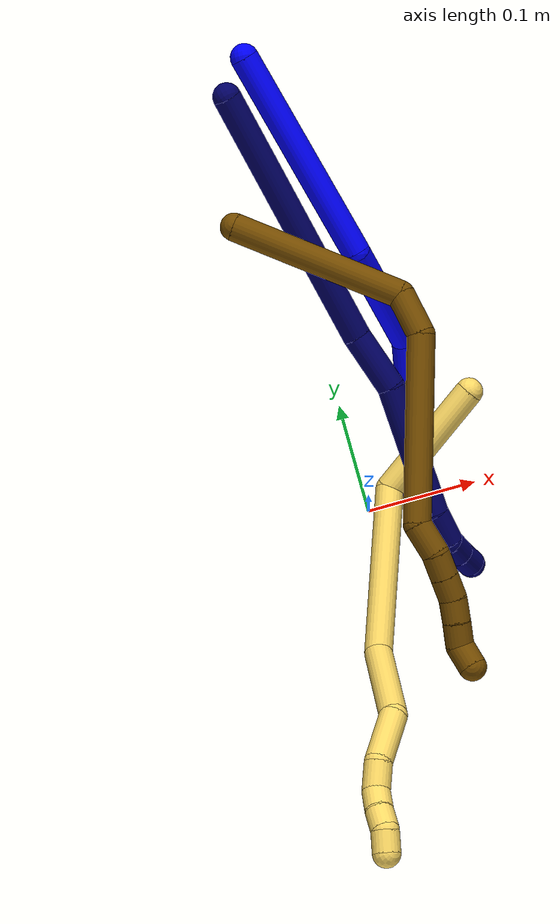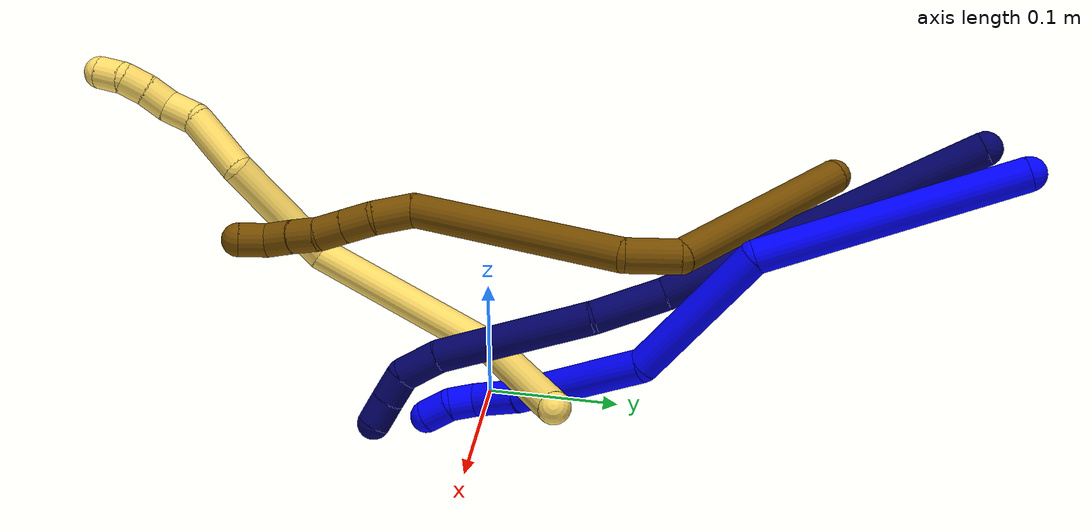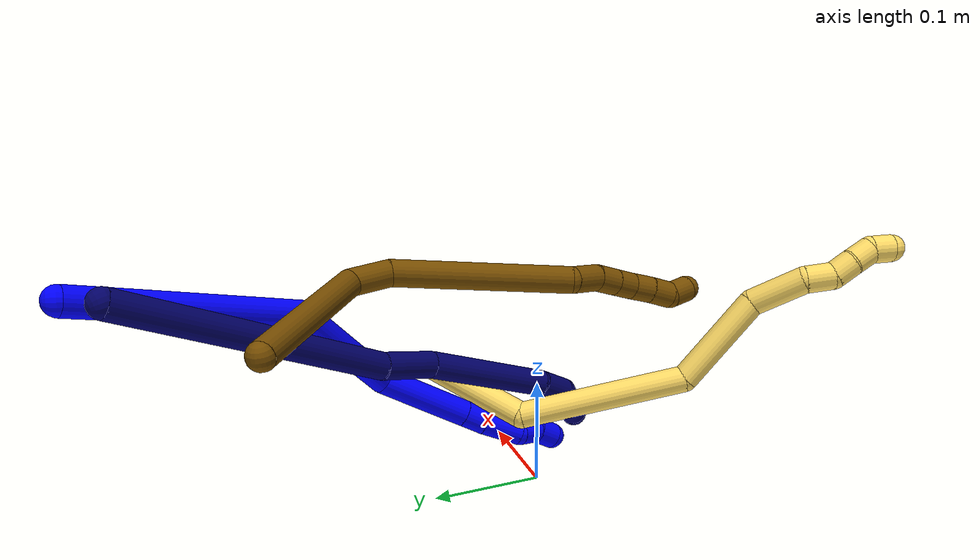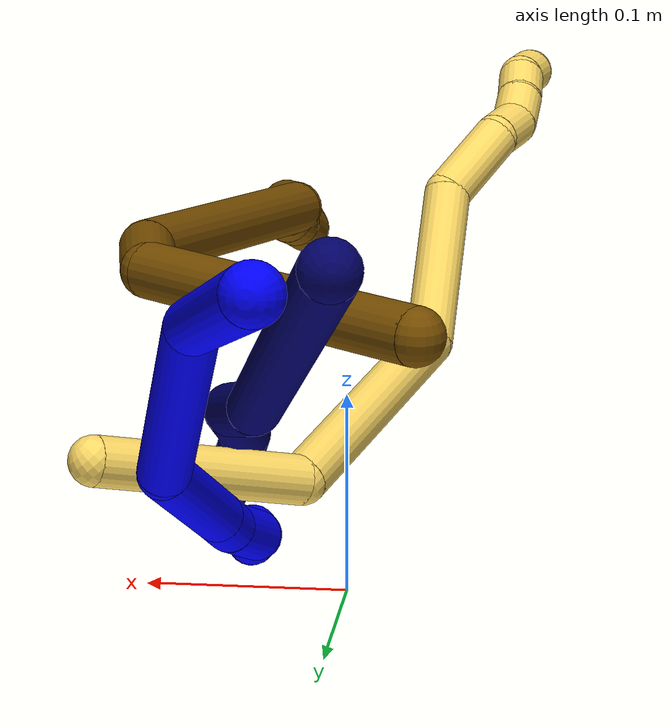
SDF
<sdf version="1.7">
 <world name="default">
  <model name="1">
   <static>0</static>
   <link name="1">
    <collision name="collision-cylinder-e_1_1_4">
     <pose>-0.028922 -0.023668 -0.090883 2.88683 -0.298747 -1.73142</pose>
     <geometry><cylinder><radius>0.0125</radius><length>0.196533</length></cylinder></geometry>
     <surface>
      <friction><ode><mu>1.16</mu><mu2>1.16</mu2><slip1>0</slip1><slip2>0</slip2></ode></friction>
      <contact><ode><kp>1e+06</kp><kd>1</kd><max_vel>0</max_vel><min_depth>0.001</min_depth></ode></contact>
     </surface>
    </collision>
    <visual name="visual-cylinder-e_1_1_4">
     <pose>-0.028922 -0.023668 -0.090883 2.88683 -0.298747 -1.73142</pose>
     <geometry><cylinder><radius>0.0125</radius><length>0.196533</length></cylinder></geometry>
     <material><ambient>0 0 1 1</ambient></material>
    </visual>
    <collision name="collision-cylinder-e_2_4_5">
     <pose>-0.069808 -0.088351 -0.220334 2.32544 -0.209386 -0.476834</pose>
     <geometry><cylinder><radius>0.0125</radius><length>0.115117</length></cylinder></geometry>
     <surface>
      <friction><ode><mu>1.16</mu><mu2>1.16</mu2><slip1>0</slip1><slip2>0</slip2></ode></friction>
      <contact><ode><kp>1e+06</kp><kd>1</kd><max_vel>0</max_vel><min_depth>0.001</min_depth></ode></contact>
     </surface>
    </collision>
    <visual name="visual-cylinder-e_2_4_5">
     <pose>-0.069808 -0.088351 -0.220334 2.32544 -0.209386 -0.476834</pose>
     <geometry><cylinder><radius>0.0125</radius><length>0.115117</length></cylinder></geometry>
     <material><ambient>0 0 1 1</ambient></material>
    </visual>
    <collision name="collision-cylinder-e_3_5_6">
     <pose>-0.076222 -0.147536 -0.297777 2.70442 0.128641 0.564431</pose>
     <geometry><cylinder><radius>0.0125</radius><length>0.086537</length></cylinder></geometry>
     <surface>
      <friction><ode><mu>1.16</mu><mu2>1.16</mu2><slip1>0</slip1><slip2>0</slip2></ode></friction>
      <contact><ode><kp>1e+06</kp><kd>1</kd><max_vel>0</max_vel><min_depth>0.001</min_depth></ode></contact>
     </surface>
    </collision>
    <visual name="visual-cylinder-e_3_5_6">
     <pose>-0.076222 -0.147536 -0.297777 2.70442 0.128641 0.564431</pose>
     <geometry><cylinder><radius>0.0125</radius><length>0.086537</length></cylinder></geometry>
     <material><ambient>0 0 1 1</ambient></material>
    </visual>
    <collision name="collision-cylinder-e_4_6_7">
     <pose>-0.069357 -0.170481 -0.346634 2.69522 0.118187 0.509976</pose>
     <geometry><cylinder><radius>0.0125</radius><length>0.022288</length></cylinder></geometry>
     <surface>
      <friction><ode><mu>1.16</mu><mu2>1.16</mu2><slip1>0</slip1><slip2>0</slip2></ode></friction>
      <contact><ode><kp>1e+06</kp><kd>1</kd><max_vel>0</max_vel><min_depth>0.001</min_depth></ode></contact>
     </surface>
    </collision>
    <visual name="visual-cylinder-e_4_6_7">
     <pose>-0.069357 -0.170481 -0.346634 2.69522 0.118187 0.509976</pose>
     <geometry><cylinder><radius>0.0125</radius><length>0.022288</length></cylinder></geometry>
     <material><ambient>0 0 1 1</ambient></material>
    </visual>
    <collision name="collision-cylinder-e_5_7_8">
     <pose>-0.064515 -0.180992 -0.374177 2.82598 0.18867 1.07285</pose>
     <geometry><cylinder><radius>0.0125</radius><length>0.037613</length></cylinder></geometry>
     <surface>
      <friction><ode><mu>1.16</mu><mu2>1.16</mu2><slip1>0</slip1><slip2>0</slip2></ode></friction>
      <contact><ode><kp>1e+06</kp><kd>1</kd><max_vel>0</max_vel><min_depth>0.001</min_depth></ode></contact>
     </surface>
    </collision>
    <visual name="visual-cylinder-e_5_7_8">
     <pose>-0.064515 -0.180992 -0.374177 2.82598 0.18867 1.07285</pose>
     <geometry><cylinder><radius>0.0125</radius><length>0.037613</length></cylinder></geometry>
     <material><ambient>0 0 1 1</ambient></material>
    </visual>
    <collision name="collision-cylinder-e_6_8_9">
     <pose>-0.063927 -0.18788 -0.401418 3.02299 -0.292756 -2.37594</pose>
     <geometry><cylinder><radius>0.0125</radius><length>0.020364</length></cylinder></geometry>
     <surface>
      <friction><ode><mu>1.16</mu><mu2>1.16</mu2><slip1>0</slip1><slip2>0</slip2></ode></friction>
      <contact><ode><kp>1e+06</kp><kd>1</kd><max_vel>0</max_vel><min_depth>0.001</min_depth></ode></contact>
     </surface>
    </collision>
    <visual name="visual-cylinder-e_6_8_9">
     <pose>-0.063927 -0.18788 -0.401418 3.02299 -0.292756 -2.37594</pose>
     <geometry><cylinder><radius>0.0125</radius><length>0.020364</length></cylinder></geometry>
     <material><ambient>0 0 1 1</ambient></material>
    </visual>
    <collision name="collision-cylinder-e_7_9_2">
     <pose>-0.068442 -0.194354 -0.420332 2.61888 -0.146914 -0.536968</pose>
     <geometry><cylinder><radius>0.0125</radius><length>0.021547</length></cylinder></geometry>
     <surface>
      <friction><ode><mu>1.16</mu><mu2>1.16</mu2><slip1>0</slip1><slip2>0</slip2></ode></friction>
      <contact><ode><kp>1e+06</kp><kd>1</kd><max_vel>0</max_vel><min_depth>0.001</min_depth></ode></contact>
     </surface>
    </collision>
    <visual name="visual-cylinder-e_7_9_2">
     <pose>-0.068442 -0.194354 -0.420332 2.61888 -0.146914 -0.536968</pose>
     <geometry><cylinder><radius>0.0125</radius><length>0.021547</length></cylinder></geometry>
     <material><ambient>0 0 1 1</ambient></material>
    </visual>
    <collision name="collision-sphere-2">
     <pose>-0.070019 -0.199674 -0.429567 0 -0 0</pose>
     <geometry><sphere><radius>0.0125</radius></sphere></geometry>
     <surface>
      <friction><ode><mu>1.16</mu><mu2>1.16</mu2><slip1>0</slip1><slip2>0</slip2></ode></friction>
      <contact><ode><kp>1e+06</kp><kd>1</kd><max_vel>0</max_vel><min_depth>0.001</min_depth></ode></contact>
     </surface>
    </collision>
    <visual name="visual-sphere-2">
     <pose>-0.070019 -0.199674 -0.429567 0 -0 0</pose>
     <geometry><sphere><radius>0.0125</radius></sphere></geometry>
     <material><ambient>0 0 1 1</ambient></material>
    </visual>
    <collision name="collision-sphere-9">
     <pose>-0.066865 -0.189033 -0.411098 0 -0 0</pose>
     <geometry><sphere><radius>0.0125</radius></sphere></geometry>
     <surface>
      <friction><ode><mu>1.16</mu><mu2>1.16</mu2><slip1>0</slip1><slip2>0</slip2></ode></friction>
      <contact><ode><kp>1e+06</kp><kd>1</kd><max_vel>0</max_vel><min_depth>0.001</min_depth></ode></contact>
     </surface>
    </collision>
    <visual name="visual-sphere-9">
     <pose>-0.066865 -0.189033 -0.411098 0 -0 0</pose>
     <geometry><sphere><radius>0.0125</radius></sphere></geometry>
     <material><ambient>0 0 1 1</ambient></material>
    </visual>
    <collision name="collision-sphere-4">
     <pose>-0.057844 -0.047335 -0.181765 0 -0 0</pose>
     <geometry><sphere><radius>0.0125</radius></sphere></geometry>
     <surface>
      <friction><ode><mu>1.16</mu><mu2>1.16</mu2><slip1>0</slip1><slip2>0</slip2></ode></friction>
      <contact><ode><kp>1e+06</kp><kd>1</kd><max_vel>0</max_vel><min_depth>0.001</min_depth></ode></contact>
     </surface>
    </collision>
    <visual name="visual-sphere-4">
     <pose>-0.057844 -0.047335 -0.181765 0 -0 0</pose>
     <geometry><sphere><radius>0.0125</radius></sphere></geometry>
     <material><ambient>0 0 1 1</ambient></material>
    </visual>
    <collision name="collision-sphere-1">
     <geometry><sphere><radius>0.0125</radius></sphere></geometry>
     <surface>
      <friction><ode><mu>1.16</mu><mu2>1.16</mu2><slip1>0</slip1><slip2>0</slip2></ode></friction>
      <contact><ode><kp>1e+06</kp><kd>1</kd><max_vel>0</max_vel><min_depth>0.001</min_depth></ode></contact>
     </surface>
    </collision>
    <visual name="visual-sphere-1">
     <geometry><sphere><radius>0.0125</radius></sphere></geometry>
     <material><ambient>0 0 1 1</ambient></material>
    </visual>
    <collision name="collision-sphere-8">
     <pose>-0.060988 -0.186726 -0.391737 0 -0 0</pose>
     <geometry><sphere><radius>0.0125</radius></sphere></geometry>
     <surface>
      <friction><ode><mu>1.16</mu><mu2>1.16</mu2><slip1>0</slip1><slip2>0</slip2></ode></friction>
      <contact><ode><kp>1e+06</kp><kd>1</kd><max_vel>0</max_vel><min_depth>0.001</min_depth></ode></contact>
     </surface>
    </collision>
    <visual name="visual-sphere-8">
     <pose>-0.060988 -0.186726 -0.391737 0 -0 0</pose>
     <geometry><sphere><radius>0.0125</radius></sphere></geometry>
     <material><ambient>0 0 1 1</ambient></material>
    </visual>
    <collision name="collision-sphere-5">
     <pose>-0.081772 -0.129368 -0.258902 0 -0 0</pose>
     <geometry><sphere><radius>0.0125</radius></sphere></geometry>
     <surface>
      <friction><ode><mu>1.16</mu><mu2>1.16</mu2><slip1>0</slip1><slip2>0</slip2></ode></friction>
      <contact><ode><kp>1e+06</kp><kd>1</kd><max_vel>0</max_vel><min_depth>0.001</min_depth></ode></contact>
     </surface>
    </collision>
    <visual name="visual-sphere-5">
     <pose>-0.081772 -0.129368 -0.258902 0 -0 0</pose>
     <geometry><sphere><radius>0.0125</radius></sphere></geometry>
     <material><ambient>0 0 1 1</ambient></material>
    </visual>
    <collision name="collision-sphere-6">
     <pose>-0.070671 -0.165703 -0.336652 0 -0 0</pose>
     <geometry><sphere><radius>0.0125</radius></sphere></geometry>
     <surface>
      <friction><ode><mu>1.16</mu><mu2>1.16</mu2><slip1>0</slip1><slip2>0</slip2></ode></friction>
      <contact><ode><kp>1e+06</kp><kd>1</kd><max_vel>0</max_vel><min_depth>0.001</min_depth></ode></contact>
     </surface>
    </collision>
    <visual name="visual-sphere-6">
     <pose>-0.070671 -0.165703 -0.336652 0 -0 0</pose>
     <geometry><sphere><radius>0.0125</radius></sphere></geometry>
     <material><ambient>0 0 1 1</ambient></material>
    </visual>
    <collision name="collision-sphere-7">
     <pose>-0.068043 -0.175258 -0.356616 0 -0 0</pose>
     <geometry><sphere><radius>0.0125</radius></sphere></geometry>
     <surface>
      <friction><ode><mu>1.16</mu><mu2>1.16</mu2><slip1>0</slip1><slip2>0</slip2></ode></friction>
      <contact><ode><kp>1e+06</kp><kd>1</kd><max_vel>0</max_vel><min_depth>0.001</min_depth></ode></contact>
     </surface>
    </collision>
    <visual name="visual-sphere-7">
     <pose>-0.068043 -0.175258 -0.356616 0 -0 0</pose>
     <geometry><sphere><radius>0.0125</radius></sphere></geometry>
     <material><ambient>0 0 1 1</ambient></material>
    </visual>
    <inertial>
     <pose>-0.054131 -0.092421 -0.216051 0 -0 0</pose>
     <mass>0.5</mass>
     <inertia>
      <ixx>-0.000565</ixx>
      <ixy>0</ixy>
      <ixz>0</ixz>
      <iyy>-0.000615</iyy>
      <iyz>0</iyz>
      <izz>0.00045</izz>
     </inertia>
    </inertial>
   </link>
   <pose>-0.007122 0.379865 0.236964 1.49733 0.066745 3.08041</pose>
  </model>
  <model name="5">
   <static>0</static>
   <link name="5">
    <collision name="collision-cylinder-e_1_1_4">
     <pose>-0.030743 -0.022711 -0.041386 2.6397 -0.57724 -1.71715</pose>
     <geometry><cylinder><radius>0.0125</radius><length>0.112673</length></cylinder></geometry>
     <surface>
      <friction><ode><mu>1.16</mu><mu2>1.16</mu2><slip1>0</slip1><slip2>0</slip2></ode></friction>
      <contact><ode><kp>1e+06</kp><kd>1</kd><max_vel>0</max_vel><min_depth>0.001</min_depth></ode></contact>
     </surface>
    </collision>
    <visual name="visual-cylinder-e_1_1_4">
     <pose>-0.030743 -0.022711 -0.041386 2.6397 -0.57724 -1.71715</pose>
     <geometry><cylinder><radius>0.0125</radius><length>0.112673</length></cylinder></geometry>
     <material><ambient>1 0.858824 0.4 1</ambient></material>
    </visual>
    <collision name="collision-cylinder-e_2_4_5">
     <pose>-0.104023 -0.110275 -0.091775 1.70873 -0.576137 -0.655987</pose>
     <geometry><cylinder><radius>0.0125</radius><length>0.156157</length></cylinder></geometry>
     <surface>
      <friction><ode><mu>1.16</mu><mu2>1.16</mu2><slip1>0</slip1><slip2>0</slip2></ode></friction>
      <contact><ode><kp>1e+06</kp><kd>1</kd><max_vel>0</max_vel><min_depth>0.001</min_depth></ode></contact>
     </surface>
    </collision>
    <visual name="visual-cylinder-e_2_4_5">
     <pose>-0.104023 -0.110275 -0.091775 1.70873 -0.576137 -0.655987</pose>
     <geometry><cylinder><radius>0.0125</radius><length>0.156157</length></cylinder></geometry>
     <material><ambient>1 0.858824 0.4 1</ambient></material>
    </visual>
    <collision name="collision-cylinder-e_3_5_6">
     <pose>-0.175969 -0.203799 -0.079004 0.921294 -0.684958 -0.350234</pose>
     <geometry><cylinder><radius>0.0125</radius><length>0.092973</length></cylinder></geometry>
     <surface>
      <friction><ode><mu>1.16</mu><mu2>1.16</mu2><slip1>0</slip1><slip2>0</slip2></ode></friction>
      <contact><ode><kp>1e+06</kp><kd>1</kd><max_vel>0</max_vel><min_depth>0.001</min_depth></ode></contact>
     </surface>
    </collision>
    <visual name="visual-cylinder-e_3_5_6">
     <pose>-0.175969 -0.203799 -0.079004 0.921294 -0.684958 -0.350234</pose>
     <geometry><cylinder><radius>0.0125</radius><length>0.092973</length></cylinder></geometry>
     <material><ambient>1 0.858824 0.4 1</ambient></material>
    </visual>
    <collision name="collision-cylinder-e_4_6_7">
     <pose>-0.225766 -0.248009 -0.057017 1.55702 -0.919521 -0.908613</pose>
     <geometry><cylinder><radius>0.0125</radius><length>0.051272</length></cylinder></geometry>
     <surface>
      <friction><ode><mu>1.16</mu><mu2>1.16</mu2><slip1>0</slip1><slip2>0</slip2></ode></friction>
      <contact><ode><kp>1e+06</kp><kd>1</kd><max_vel>0</max_vel><min_depth>0.001</min_depth></ode></contact>
     </surface>
    </collision>
    <visual name="visual-cylinder-e_4_6_7">
     <pose>-0.225766 -0.248009 -0.057017 1.55702 -0.919521 -0.908613</pose>
     <geometry><cylinder><radius>0.0125</radius><length>0.051272</length></cylinder></geometry>
     <material><ambient>1 0.858824 0.4 1</ambient></material>
    </visual>
    <collision name="collision-cylinder-e_5_7_8">
     <pose>-0.252645 -0.274458 -0.05927 1.79321 -0.525772 -0.649684</pose>
     <geometry><cylinder><radius>0.0125</radius><length>0.025866</length></cylinder></geometry>
     <surface>
      <friction><ode><mu>1.16</mu><mu2>1.16</mu2><slip1>0</slip1><slip2>0</slip2></ode></friction>
      <contact><ode><kp>1e+06</kp><kd>1</kd><max_vel>0</max_vel><min_depth>0.001</min_depth></ode></contact>
     </surface>
    </collision>
    <visual name="visual-cylinder-e_5_7_8">
     <pose>-0.252645 -0.274458 -0.05927 1.79321 -0.525772 -0.649684</pose>
     <geometry><cylinder><radius>0.0125</radius><length>0.025866</length></cylinder></geometry>
     <material><ambient>1 0.858824 0.4 1</ambient></material>
    </visual>
    <collision name="collision-cylinder-e_6_8_9">
     <pose>-0.265178 -0.293449 -0.058776 1.21944 -0.612171 -0.434511</pose>
     <geometry><cylinder><radius>0.0125</radius><length>0.02103</length></cylinder></geometry>
     <surface>
      <friction><ode><mu>1.16</mu><mu2>1.16</mu2><slip1>0</slip1><slip2>0</slip2></ode></friction>
      <contact><ode><kp>1e+06</kp><kd>1</kd><max_vel>0</max_vel><min_depth>0.001</min_depth></ode></contact>
     </surface>
    </collision>
    <visual name="visual-cylinder-e_6_8_9">
     <pose>-0.265178 -0.293449 -0.058776 1.21944 -0.612171 -0.434511</pose>
     <geometry><cylinder><radius>0.0125</radius><length>0.02103</length></cylinder></geometry>
     <material><ambient>1 0.858824 0.4 1</ambient></material>
    </visual>
    <collision name="collision-cylinder-e_7_9_10">
     <pose>-0.27572 -0.310043 -0.053066 1.25862 -0.465952 -0.342136</pose>
     <geometry><cylinder><radius>0.0125</radius><length>0.020029</length></cylinder></geometry>
     <surface>
      <friction><ode><mu>1.16</mu><mu2>1.16</mu2><slip1>0</slip1><slip2>0</slip2></ode></friction>
      <contact><ode><kp>1e+06</kp><kd>1</kd><max_vel>0</max_vel><min_depth>0.001</min_depth></ode></contact>
     </surface>
    </collision>
    <visual name="visual-cylinder-e_7_9_10">
     <pose>-0.27572 -0.310043 -0.053066 1.25862 -0.465952 -0.342136</pose>
     <geometry><cylinder><radius>0.0125</radius><length>0.020029</length></cylinder></geometry>
     <material><ambient>1 0.858824 0.4 1</ambient></material>
    </visual>
    <collision name="collision-cylinder-e_8_10_2">
     <pose>-0.283568 -0.327777 -0.052269 1.77929 -0.341407 -0.41909</pose>
     <geometry><cylinder><radius>0.0125</radius><length>0.020002</length></cylinder></geometry>
     <surface>
      <friction><ode><mu>1.16</mu><mu2>1.16</mu2><slip1>0</slip1><slip2>0</slip2></ode></friction>
      <contact><ode><kp>1e+06</kp><kd>1</kd><max_vel>0</max_vel><min_depth>0.001</min_depth></ode></contact>
     </surface>
    </collision>
    <visual name="visual-cylinder-e_8_10_2">
     <pose>-0.283568 -0.327777 -0.052269 1.77929 -0.341407 -0.41909</pose>
     <geometry><cylinder><radius>0.0125</radius><length>0.020002</length></cylinder></geometry>
     <material><ambient>1 0.858824 0.4 1</ambient></material>
    </visual>
    <collision name="collision-sphere-2">
     <pose>-0.286916 -0.336996 -0.05422 0 -0 0</pose>
     <geometry><sphere><radius>0.0125</radius></sphere></geometry>
     <surface>
      <friction><ode><mu>1.16</mu><mu2>1.16</mu2><slip1>0</slip1><slip2>0</slip2></ode></friction>
      <contact><ode><kp>1e+06</kp><kd>1</kd><max_vel>0</max_vel><min_depth>0.001</min_depth></ode></contact>
     </surface>
    </collision>
    <visual name="visual-sphere-2">
     <pose>-0.286916 -0.336996 -0.05422 0 -0 0</pose>
     <geometry><sphere><radius>0.0125</radius></sphere></geometry>
     <material><ambient>1 0.858824 0.4 1</ambient></material>
    </visual>
    <collision name="collision-sphere-10">
     <pose>-0.280219 -0.318557 -0.050319 0 -0 0</pose>
     <geometry><sphere><radius>0.0125</radius></sphere></geometry>
     <surface>
      <friction><ode><mu>1.16</mu><mu2>1.16</mu2><slip1>0</slip1><slip2>0</slip2></ode></friction>
      <contact><ode><kp>1e+06</kp><kd>1</kd><max_vel>0</max_vel><min_depth>0.001</min_depth></ode></contact>
     </surface>
    </collision>
    <visual name="visual-sphere-10">
     <pose>-0.280219 -0.318557 -0.050319 0 -0 0</pose>
     <geometry><sphere><radius>0.0125</radius></sphere></geometry>
     <material><ambient>1 0.858824 0.4 1</ambient></material>
    </visual>
    <collision name="collision-sphere-9">
     <pose>-0.271221 -0.301529 -0.055814 0 -0 0</pose>
     <geometry><sphere><radius>0.0125</radius></sphere></geometry>
     <surface>
      <friction><ode><mu>1.16</mu><mu2>1.16</mu2><slip1>0</slip1><slip2>0</slip2></ode></friction>
      <contact><ode><kp>1e+06</kp><kd>1</kd><max_vel>0</max_vel><min_depth>0.001</min_depth></ode></contact>
     </surface>
    </collision>
    <visual name="visual-sphere-9">
     <pose>-0.271221 -0.301529 -0.055814 0 -0 0</pose>
     <geometry><sphere><radius>0.0125</radius></sphere></geometry>
     <material><ambient>1 0.858824 0.4 1</ambient></material>
    </visual>
    <collision name="collision-sphere-4">
     <pose>-0.061487 -0.045423 -0.082772 0 -0 0</pose>
     <geometry><sphere><radius>0.0125</radius></sphere></geometry>
     <surface>
      <friction><ode><mu>1.16</mu><mu2>1.16</mu2><slip1>0</slip1><slip2>0</slip2></ode></friction>
      <contact><ode><kp>1e+06</kp><kd>1</kd><max_vel>0</max_vel><min_depth>0.001</min_depth></ode></contact>
     </surface>
    </collision>
    <visual name="visual-sphere-4">
     <pose>-0.061487 -0.045423 -0.082772 0 -0 0</pose>
     <geometry><sphere><radius>0.0125</radius></sphere></geometry>
     <material><ambient>1 0.858824 0.4 1</ambient></material>
    </visual>
    <collision name="collision-sphere-1">
     <geometry><sphere><radius>0.0125</radius></sphere></geometry>
     <surface>
      <friction><ode><mu>1.16</mu><mu2>1.16</mu2><slip1>0</slip1><slip2>0</slip2></ode></friction>
      <contact><ode><kp>1e+06</kp><kd>1</kd><max_vel>0</max_vel><min_depth>0.001</min_depth></ode></contact>
     </surface>
    </collision>
    <visual name="visual-sphere-1">
     <geometry><sphere><radius>0.0125</radius></sphere></geometry>
     <material><ambient>1 0.858824 0.4 1</ambient></material>
    </visual>
    <collision name="collision-sphere-8">
     <pose>-0.259136 -0.285369 -0.061738 0 -0 0</pose>
     <geometry><sphere><radius>0.0125</radius></sphere></geometry>
     <surface>
      <friction><ode><mu>1.16</mu><mu2>1.16</mu2><slip1>0</slip1><slip2>0</slip2></ode></friction>
      <contact><ode><kp>1e+06</kp><kd>1</kd><max_vel>0</max_vel><min_depth>0.001</min_depth></ode></contact>
     </surface>
    </collision>
    <visual name="visual-sphere-8">
     <pose>-0.259136 -0.285369 -0.061738 0 -0 0</pose>
     <geometry><sphere><radius>0.0125</radius></sphere></geometry>
     <material><ambient>1 0.858824 0.4 1</ambient></material>
    </visual>
    <collision name="collision-sphere-5">
     <pose>-0.146559 -0.175128 -0.100777 0 -0 0</pose>
     <geometry><sphere><radius>0.0125</radius></sphere></geometry>
     <surface>
      <friction><ode><mu>1.16</mu><mu2>1.16</mu2><slip1>0</slip1><slip2>0</slip2></ode></friction>
      <contact><ode><kp>1e+06</kp><kd>1</kd><max_vel>0</max_vel><min_depth>0.001</min_depth></ode></contact>
     </surface>
    </collision>
    <visual name="visual-sphere-5">
     <pose>-0.146559 -0.175128 -0.100777 0 -0 0</pose>
     <geometry><sphere><radius>0.0125</radius></sphere></geometry>
     <material><ambient>1 0.858824 0.4 1</ambient></material>
    </visual>
    <collision name="collision-sphere-6">
     <pose>-0.205378 -0.23247 -0.057231 0 -0 0</pose>
     <geometry><sphere><radius>0.0125</radius></sphere></geometry>
     <surface>
      <friction><ode><mu>1.16</mu><mu2>1.16</mu2><slip1>0</slip1><slip2>0</slip2></ode></friction>
      <contact><ode><kp>1e+06</kp><kd>1</kd><max_vel>0</max_vel><min_depth>0.001</min_depth></ode></contact>
     </surface>
    </collision>
    <visual name="visual-sphere-6">
     <pose>-0.205378 -0.23247 -0.057231 0 -0 0</pose>
     <geometry><sphere><radius>0.0125</radius></sphere></geometry>
     <material><ambient>1 0.858824 0.4 1</ambient></material>
    </visual>
    <collision name="collision-sphere-7">
     <pose>-0.246154 -0.263548 -0.056803 0 -0 0</pose>
     <geometry><sphere><radius>0.0125</radius></sphere></geometry>
     <surface>
      <friction><ode><mu>1.16</mu><mu2>1.16</mu2><slip1>0</slip1><slip2>0</slip2></ode></friction>
      <contact><ode><kp>1e+06</kp><kd>1</kd><max_vel>0</max_vel><min_depth>0.001</min_depth></ode></contact>
     </surface>
    </collision>
    <visual name="visual-sphere-7">
     <pose>-0.246154 -0.263548 -0.056803 0 -0 0</pose>
     <geometry><sphere><radius>0.0125</radius></sphere></geometry>
     <material><ambient>1 0.858824 0.4 1</ambient></material>
    </visual>
    <inertial>
     <pose>-0.141899 -0.154958 -0.068281 0 -0 0</pose>
     <mass>0.5</mass>
     <inertia>
      <ixx>-5.7e-05</ixx>
      <ixy>0</ixy>
      <ixz>0</ixz>
      <iyy>-0.000141</iyy>
      <iyz>0</iyz>
      <izz>0.000674</izz>
     </inertia>
    </inertial>
   </link>
   <pose>0.112129 0.068818 0.082654 0.068206 0.712473 0.230799</pose>
  </model>
  <model name="7">
   <static>0</static>
   <link name="7">
    <collision name="collision-cylinder-e_1_1_4">
     <pose>0.034313 -0.065505 -0.099217 2.55806 0.280976 0.880151</pose>
     <geometry><cylinder><radius>0.0125</radius><length>0.247487</length></cylinder></geometry>
     <surface>
      <friction><ode><mu>1.16</mu><mu2>1.16</mu2><slip1>0</slip1><slip2>0</slip2></ode></friction>
      <contact><ode><kp>1e+06</kp><kd>1</kd><max_vel>0</max_vel><min_depth>0.001</min_depth></ode></contact>
     </surface>
    </collision>
    <visual name="visual-cylinder-e_1_1_4">
     <pose>0.034313 -0.065505 -0.099217 2.55806 0.280976 0.880151</pose>
     <geometry><cylinder><radius>0.0125</radius><length>0.247487</length></cylinder></geometry>
     <material><ambient>0.003922 0 0.403922 1</ambient></material>
    </visual>
    <collision name="collision-cylinder-e_2_4_5">
     <pose>0.071944 -0.142815 -0.222897 2.69203 0.121555 0.520232</pose>
     <geometry><cylinder><radius>0.0125</radius><length>0.054728</length></cylinder></geometry>
     <surface>
      <friction><ode><mu>1.16</mu><mu2>1.16</mu2><slip1>0</slip1><slip2>0</slip2></ode></friction>
      <contact><ode><kp>1e+06</kp><kd>1</kd><max_vel>0</max_vel><min_depth>0.001</min_depth></ode></contact>
     </surface>
    </collision>
    <visual name="visual-cylinder-e_2_4_5">
     <pose>0.071944 -0.142815 -0.222897 2.69203 0.121555 0.520232</pose>
     <geometry><cylinder><radius>0.0125</radius><length>0.054728</length></cylinder></geometry>
     <material><ambient>0.003922 0 0.403922 1</ambient></material>
    </visual>
    <collision name="collision-cylinder-e_3_5_6">
     <pose>0.098136 -0.177041 -0.298927 2.73143 0.386337 1.50939</pose>
     <geometry><cylinder><radius>0.0125</radius><length>0.121409</length></cylinder></geometry>
     <surface>
      <friction><ode><mu>1.16</mu><mu2>1.16</mu2><slip1>0</slip1><slip2>0</slip2></ode></friction>
      <contact><ode><kp>1e+06</kp><kd>1</kd><max_vel>0</max_vel><min_depth>0.001</min_depth></ode></contact>
     </surface>
    </collision>
    <visual name="visual-cylinder-e_3_5_6">
     <pose>0.098136 -0.177041 -0.298927 2.73143 0.386337 1.50939</pose>
     <geometry><cylinder><radius>0.0125</radius><length>0.121409</length></cylinder></geometry>
     <material><ambient>0.003922 0 0.403922 1</ambient></material>
    </visual>
    <collision name="collision-cylinder-e_4_6_7">
     <pose>0.126167 -0.208394 -0.36255 2.504 0.331099 0.93721</pose>
     <geometry><cylinder><radius>0.0125</radius><length>0.031733</length></cylinder></geometry>
     <surface>
      <friction><ode><mu>1.16</mu><mu2>1.16</mu2><slip1>0</slip1><slip2>0</slip2></ode></friction>
      <contact><ode><kp>1e+06</kp><kd>1</kd><max_vel>0</max_vel><min_depth>0.001</min_depth></ode></contact>
     </surface>
    </collision>
    <visual name="visual-cylinder-e_4_6_7">
     <pose>0.126167 -0.208394 -0.36255 2.504 0.331099 0.93721</pose>
     <geometry><cylinder><radius>0.0125</radius><length>0.031733</length></cylinder></geometry>
     <material><ambient>0.003922 0 0.403922 1</ambient></material>
    </visual>
    <collision name="collision-cylinder-e_5_7_8">
     <pose>0.134533 -0.227299 -0.378777 1.96683 0.288479 0.429601</pose>
     <geometry><cylinder><radius>0.0125</radius><length>0.022551</length></cylinder></geometry>
     <surface>
      <friction><ode><mu>1.16</mu><mu2>1.16</mu2><slip1>0</slip1><slip2>0</slip2></ode></friction>
      <contact><ode><kp>1e+06</kp><kd>1</kd><max_vel>0</max_vel><min_depth>0.001</min_depth></ode></contact>
     </surface>
    </collision>
    <visual name="visual-cylinder-e_5_7_8">
     <pose>0.134533 -0.227299 -0.378777 1.96683 0.288479 0.429601</pose>
     <geometry><cylinder><radius>0.0125</radius><length>0.022551</length></cylinder></geometry>
     <material><ambient>0.003922 0 0.403922 1</ambient></material>
    </visual>
    <collision name="collision-cylinder-e_6_8_2">
     <pose>0.140263 -0.247254 -0.386949 1.95212 0.23039 0.338829</pose>
     <geometry><cylinder><radius>0.0125</radius><length>0.022093</length></cylinder></geometry>
     <surface>
      <friction><ode><mu>1.16</mu><mu2>1.16</mu2><slip1>0</slip1><slip2>0</slip2></ode></friction>
      <contact><ode><kp>1e+06</kp><kd>1</kd><max_vel>0</max_vel><min_depth>0.001</min_depth></ode></contact>
     </surface>
    </collision>
    <visual name="visual-cylinder-e_6_8_2">
     <pose>0.140263 -0.247254 -0.386949 1.95212 0.23039 0.338829</pose>
     <geometry><cylinder><radius>0.0125</radius><length>0.022093</length></cylinder></geometry>
     <material><ambient>0.003922 0 0.403922 1</ambient></material>
    </visual>
    <collision name="collision-sphere-2">
     <pose>0.142786 -0.257236 -0.390951 0 -0 0</pose>
     <geometry><sphere><radius>0.0125</radius></sphere></geometry>
     <surface>
      <friction><ode><mu>1.16</mu><mu2>1.16</mu2><slip1>0</slip1><slip2>0</slip2></ode></friction>
      <contact><ode><kp>1e+06</kp><kd>1</kd><max_vel>0</max_vel><min_depth>0.001</min_depth></ode></contact>
     </surface>
    </collision>
    <visual name="visual-sphere-2">
     <pose>0.142786 -0.257236 -0.390951 0 -0 0</pose>
     <geometry><sphere><radius>0.0125</radius></sphere></geometry>
     <material><ambient>0.003922 0 0.403922 1</ambient></material>
    </visual>
    <collision name="collision-sphere-4">
     <pose>0.068626 -0.131011 -0.198434 0 -0 0</pose>
     <geometry><sphere><radius>0.0125</radius></sphere></geometry>
     <surface>
      <friction><ode><mu>1.16</mu><mu2>1.16</mu2><slip1>0</slip1><slip2>0</slip2></ode></friction>
      <contact><ode><kp>1e+06</kp><kd>1</kd><max_vel>0</max_vel><min_depth>0.001</min_depth></ode></contact>
     </surface>
    </collision>
    <visual name="visual-sphere-4">
     <pose>0.068626 -0.131011 -0.198434 0 -0 0</pose>
     <geometry><sphere><radius>0.0125</radius></sphere></geometry>
     <material><ambient>0.003922 0 0.403922 1</ambient></material>
    </visual>
    <collision name="collision-sphere-1">
     <geometry><sphere><radius>0.0125</radius></sphere></geometry>
     <surface>
      <friction><ode><mu>1.16</mu><mu2>1.16</mu2><slip1>0</slip1><slip2>0</slip2></ode></friction>
      <contact><ode><kp>1e+06</kp><kd>1</kd><max_vel>0</max_vel><min_depth>0.001</min_depth></ode></contact>
     </surface>
    </collision>
    <visual name="visual-sphere-1">
     <geometry><sphere><radius>0.0125</radius></sphere></geometry>
     <material><ambient>0.003922 0 0.403922 1</ambient></material>
    </visual>
    <collision name="collision-sphere-8">
     <pose>0.137741 -0.237272 -0.382947 0 -0 0</pose>
     <geometry><sphere><radius>0.0125</radius></sphere></geometry>
     <surface>
      <friction><ode><mu>1.16</mu><mu2>1.16</mu2><slip1>0</slip1><slip2>0</slip2></ode></friction>
      <contact><ode><kp>1e+06</kp><kd>1</kd><max_vel>0</max_vel><min_depth>0.001</min_depth></ode></contact>
     </surface>
    </collision>
    <visual name="visual-sphere-8">
     <pose>0.137741 -0.237272 -0.382947 0 -0 0</pose>
     <geometry><sphere><radius>0.0125</radius></sphere></geometry>
     <material><ambient>0.003922 0 0.403922 1</ambient></material>
    </visual>
    <collision name="collision-sphere-5">
     <pose>0.075263 -0.154618 -0.247361 0 -0 0</pose>
     <geometry><sphere><radius>0.0125</radius></sphere></geometry>
     <surface>
      <friction><ode><mu>1.16</mu><mu2>1.16</mu2><slip1>0</slip1><slip2>0</slip2></ode></friction>
      <contact><ode><kp>1e+06</kp><kd>1</kd><max_vel>0</max_vel><min_depth>0.001</min_depth></ode></contact>
     </surface>
    </collision>
    <visual name="visual-sphere-5">
     <pose>0.075263 -0.154618 -0.247361 0 -0 0</pose>
     <geometry><sphere><radius>0.0125</radius></sphere></geometry>
     <material><ambient>0.003922 0 0.403922 1</ambient></material>
    </visual>
    <collision name="collision-sphere-6">
     <pose>0.121009 -0.199463 -0.350494 0 -0 0</pose>
     <geometry><sphere><radius>0.0125</radius></sphere></geometry>
     <surface>
      <friction><ode><mu>1.16</mu><mu2>1.16</mu2><slip1>0</slip1><slip2>0</slip2></ode></friction>
      <contact><ode><kp>1e+06</kp><kd>1</kd><max_vel>0</max_vel><min_depth>0.001</min_depth></ode></contact>
     </surface>
    </collision>
    <visual name="visual-sphere-6">
     <pose>0.121009 -0.199463 -0.350494 0 -0 0</pose>
     <geometry><sphere><radius>0.0125</radius></sphere></geometry>
     <material><ambient>0.003922 0 0.403922 1</ambient></material>
    </visual>
    <collision name="collision-sphere-7">
     <pose>0.131325 -0.217326 -0.374607 0 -0 0</pose>
     <geometry><sphere><radius>0.0125</radius></sphere></geometry>
     <surface>
      <friction><ode><mu>1.16</mu><mu2>1.16</mu2><slip1>0</slip1><slip2>0</slip2></ode></friction>
      <contact><ode><kp>1e+06</kp><kd>1</kd><max_vel>0</max_vel><min_depth>0.001</min_depth></ode></contact>
     </surface>
    </collision>
    <visual name="visual-sphere-7">
     <pose>0.131325 -0.217326 -0.374607 0 -0 0</pose>
     <geometry><sphere><radius>0.0125</radius></sphere></geometry>
     <material><ambient>0.003922 0 0.403922 1</ambient></material>
    </visual>
    <inertial>
     <pose>0.068961 -0.125446 -0.203283 0 -0 0</pose>
     <mass>0.5</mass>
     <inertia>
      <ixx>0.001915</ixx>
      <ixy>0</ixy>
      <ixz>0</ixz>
      <iyy>0.00055</iyy>
      <iyz>0</iyz>
      <izz>0.000297</izz>
     </inertia>
    </inertial>
   </link>
   <pose>-0.031111 0.349822 0.239382 1.77683 0.538379 -2.81487</pose>
  </model>
  <model name="12">
   <static>0</static>
   <link name="12">
    <collision name="collision-cylinder-e_1_1_4">
     <pose>0.05621 -0.054883 -0.005708 1.67442 0.794646 0.871414</pose>
     <geometry><cylinder><radius>0.0125</radius><length>0.157535</length></cylinder></geometry>
     <surface>
      <friction><ode><mu>1.16</mu><mu2>1.16</mu2><slip1>0</slip1><slip2>0</slip2></ode></friction>
      <contact><ode><kp>1e+06</kp><kd>1</kd><max_vel>0</max_vel><min_depth>0.001</min_depth></ode></contact>
     </surface>
    </collision>
    <visual name="visual-cylinder-e_1_1_4">
     <pose>0.05621 -0.054883 -0.005708 1.67442 0.794646 0.871414</pose>
     <geometry><cylinder><radius>0.0125</radius><length>0.157535</length></cylinder></geometry>
     <material><ambient>0.466667 0.301961 0 1</ambient></material>
    </visual>
    <collision name="collision-cylinder-e_2_4_5">
     <pose>0.114006 -0.12941 -0.012645 1.63332 0.080469 0.085658</pose>
     <geometry><cylinder><radius>0.0125</radius><length>0.03949</length></cylinder></geometry>
     <surface>
      <friction><ode><mu>1.16</mu><mu2>1.16</mu2><slip1>0</slip1><slip2>0</slip2></ode></friction>
      <contact><ode><kp>1e+06</kp><kd>1</kd><max_vel>0</max_vel><min_depth>0.001</min_depth></ode></contact>
     </surface>
    </collision>
    <visual name="visual-cylinder-e_2_4_5">
     <pose>0.114006 -0.12941 -0.012645 1.63332 0.080469 0.085658</pose>
     <geometry><cylinder><radius>0.0125</radius><length>0.03949</length></cylinder></geometry>
     <material><ambient>0.466667 0.301961 0 1</ambient></material>
    </visual>
    <collision name="collision-cylinder-e_3_5_6">
     <pose>0.083039 -0.224015 -0.026732 1.74066 -0.404428 -0.477084</pose>
     <geometry><cylinder><radius>0.0125</radius><length>0.165463</length></cylinder></geometry>
     <surface>
      <friction><ode><mu>1.16</mu><mu2>1.16</mu2><slip1>0</slip1><slip2>0</slip2></ode></friction>
      <contact><ode><kp>1e+06</kp><kd>1</kd><max_vel>0</max_vel><min_depth>0.001</min_depth></ode></contact>
     </surface>
    </collision>
    <visual name="visual-cylinder-e_3_5_6">
     <pose>0.083039 -0.224015 -0.026732 1.74066 -0.404428 -0.477084</pose>
     <geometry><cylinder><radius>0.0125</radius><length>0.165463</length></cylinder></geometry>
     <material><ambient>0.466667 0.301961 0 1</ambient></material>
    </visual>
    <collision name="collision-cylinder-e_4_6_7">
     <pose>0.053106 -0.313204 -0.043315 1.82696 0.176357 0.228097</pose>
     <geometry><cylinder><radius>0.0125</radius><length>0.029875</length></cylinder></geometry>
     <surface>
      <friction><ode><mu>1.16</mu><mu2>1.16</mu2><slip1>0</slip1><slip2>0</slip2></ode></friction>
      <contact><ode><kp>1e+06</kp><kd>1</kd><max_vel>0</max_vel><min_depth>0.001</min_depth></ode></contact>
     </surface>
    </collision>
    <visual name="visual-cylinder-e_4_6_7">
     <pose>0.053106 -0.313204 -0.043315 1.82696 0.176357 0.228097</pose>
     <geometry><cylinder><radius>0.0125</radius><length>0.029875</length></cylinder></geometry>
     <material><ambient>0.466667 0.301961 0 1</ambient></material>
    </visual>
    <collision name="collision-cylinder-e_5_7_8">
     <pose>0.055669 -0.337413 -0.052078 2.03804 -0.00508 -0.008253</pose>
     <geometry><cylinder><radius>0.0125</radius><length>0.022364</length></cylinder></geometry>
     <surface>
      <friction><ode><mu>1.16</mu><mu2>1.16</mu2><slip1>0</slip1><slip2>0</slip2></ode></friction>
      <contact><ode><kp>1e+06</kp><kd>1</kd><max_vel>0</max_vel><min_depth>0.001</min_depth></ode></contact>
     </surface>
    </collision>
    <visual name="visual-cylinder-e_5_7_8">
     <pose>0.055669 -0.337413 -0.052078 2.03804 -0.00508 -0.008253</pose>
     <geometry><cylinder><radius>0.0125</radius><length>0.022364</length></cylinder></geometry>
     <material><ambient>0.466667 0.301961 0 1</ambient></material>
    </visual>
    <collision name="collision-cylinder-e_6_8_9">
     <pose>0.055586 -0.35673 -0.061813 2.03713 -0.00255 -0.004138</pose>
     <geometry><cylinder><radius>0.0125</radius><length>0.020899</length></cylinder></geometry>
     <surface>
      <friction><ode><mu>1.16</mu><mu2>1.16</mu2><slip1>0</slip1><slip2>0</slip2></ode></friction>
      <contact><ode><kp>1e+06</kp><kd>1</kd><max_vel>0</max_vel><min_depth>0.001</min_depth></ode></contact>
     </surface>
    </collision>
    <visual name="visual-cylinder-e_6_8_9">
     <pose>0.055586 -0.35673 -0.061813 2.03713 -0.00255 -0.004138</pose>
     <geometry><cylinder><radius>0.0125</radius><length>0.020899</length></cylinder></geometry>
     <material><ambient>0.466667 0.301961 0 1</ambient></material>
    </visual>
    <collision name="collision-cylinder-e_7_9_10">
     <pose>0.053359 -0.375593 -0.070422 1.96026 -0.210476 -0.312495</pose>
     <geometry><cylinder><radius>0.0125</radius><length>0.021065</length></cylinder></geometry>
     <surface>
      <friction><ode><mu>1.16</mu><mu2>1.16</mu2><slip1>0</slip1><slip2>0</slip2></ode></friction>
      <contact><ode><kp>1e+06</kp><kd>1</kd><max_vel>0</max_vel><min_depth>0.001</min_depth></ode></contact>
     </surface>
    </collision>
    <visual name="visual-cylinder-e_7_9_10">
     <pose>0.053359 -0.375593 -0.070422 1.96026 -0.210476 -0.312495</pose>
     <geometry><cylinder><radius>0.0125</radius><length>0.021065</length></cylinder></geometry>
     <material><ambient>0.466667 0.301961 0 1</ambient></material>
    </visual>
    <collision name="collision-cylinder-e_8_10_11">
     <pose>0.04863 -0.394671 -0.078917 2.01838 -0.234308 -0.369834</pose>
     <geometry><cylinder><radius>0.0125</radius><length>0.021782</length></cylinder></geometry>
     <surface>
      <friction><ode><mu>1.16</mu><mu2>1.16</mu2><slip1>0</slip1><slip2>0</slip2></ode></friction>
      <contact><ode><kp>1e+06</kp><kd>1</kd><max_vel>0</max_vel><min_depth>0.001</min_depth></ode></contact>
     </surface>
    </collision>
    <visual name="visual-cylinder-e_8_10_11">
     <pose>0.04863 -0.394671 -0.078917 2.01838 -0.234308 -0.369834</pose>
     <geometry><cylinder><radius>0.0125</radius><length>0.021782</length></cylinder></geometry>
     <material><ambient>0.466667 0.301961 0 1</ambient></material>
    </visual>
    <collision name="collision-cylinder-e_9_11_2">
     <pose>0.047769 -0.414853 -0.083698 1.58927 0.155568 0.158457</pose>
     <geometry><cylinder><radius>0.0125</radius><length>0.021527</length></cylinder></geometry>
     <surface>
      <friction><ode><mu>1.16</mu><mu2>1.16</mu2><slip1>0</slip1><slip2>0</slip2></ode></friction>
      <contact><ode><kp>1e+06</kp><kd>1</kd><max_vel>0</max_vel><min_depth>0.001</min_depth></ode></contact>
     </surface>
    </collision>
    <visual name="visual-cylinder-e_9_11_2">
     <pose>0.047769 -0.414853 -0.083698 1.58927 0.155568 0.158457</pose>
     <geometry><cylinder><radius>0.0125</radius><length>0.021527</length></cylinder></geometry>
     <material><ambient>0.466667 0.301961 0 1</ambient></material>
    </visual>
    <collision name="collision-sphere-2">
     <pose>0.049437 -0.425485 -0.083895 0 -0 0</pose>
     <geometry><sphere><radius>0.0125</radius></sphere></geometry>
     <surface>
      <friction><ode><mu>1.16</mu><mu2>1.16</mu2><slip1>0</slip1><slip2>0</slip2></ode></friction>
      <contact><ode><kp>1e+06</kp><kd>1</kd><max_vel>0</max_vel><min_depth>0.001</min_depth></ode></contact>
     </surface>
    </collision>
    <visual name="visual-sphere-2">
     <pose>0.049437 -0.425485 -0.083895 0 -0 0</pose>
     <geometry><sphere><radius>0.0125</radius></sphere></geometry>
     <material><ambient>0.466667 0.301961 0 1</ambient></material>
    </visual>
    <collision name="collision-sphere-11">
     <pose>0.046101 -0.404221 -0.083502 0 -0 0</pose>
     <geometry><sphere><radius>0.0125</radius></sphere></geometry>
     <surface>
      <friction><ode><mu>1.16</mu><mu2>1.16</mu2><slip1>0</slip1><slip2>0</slip2></ode></friction>
      <contact><ode><kp>1e+06</kp><kd>1</kd><max_vel>0</max_vel><min_depth>0.001</min_depth></ode></contact>
     </surface>
    </collision>
    <visual name="visual-sphere-11">
     <pose>0.046101 -0.404221 -0.083502 0 -0 0</pose>
     <geometry><sphere><radius>0.0125</radius></sphere></geometry>
     <material><ambient>0.466667 0.301961 0 1</ambient></material>
    </visual>
    <collision name="collision-sphere-10">
     <pose>0.051158 -0.385122 -0.074333 0 -0 0</pose>
     <geometry><sphere><radius>0.0125</radius></sphere></geometry>
     <surface>
      <friction><ode><mu>1.16</mu><mu2>1.16</mu2><slip1>0</slip1><slip2>0</slip2></ode></friction>
      <contact><ode><kp>1e+06</kp><kd>1</kd><max_vel>0</max_vel><min_depth>0.001</min_depth></ode></contact>
     </surface>
    </collision>
    <visual name="visual-sphere-10">
     <pose>0.051158 -0.385122 -0.074333 0 -0 0</pose>
     <geometry><sphere><radius>0.0125</radius></sphere></geometry>
     <material><ambient>0.466667 0.301961 0 1</ambient></material>
    </visual>
    <collision name="collision-sphere-9">
     <pose>0.055559 -0.366064 -0.066511 0 -0 0</pose>
     <geometry><sphere><radius>0.0125</radius></sphere></geometry>
     <surface>
      <friction><ode><mu>1.16</mu><mu2>1.16</mu2><slip1>0</slip1><slip2>0</slip2></ode></friction>
      <contact><ode><kp>1e+06</kp><kd>1</kd><max_vel>0</max_vel><min_depth>0.001</min_depth></ode></contact>
     </surface>
    </collision>
    <visual name="visual-sphere-9">
     <pose>0.055559 -0.366064 -0.066511 0 -0 0</pose>
     <geometry><sphere><radius>0.0125</radius></sphere></geometry>
     <material><ambient>0.466667 0.301961 0 1</ambient></material>
    </visual>
    <collision name="collision-sphere-4">
     <pose>0.112419 -0.109767 -0.011416 0 -0 0</pose>
     <geometry><sphere><radius>0.0125</radius></sphere></geometry>
     <surface>
      <friction><ode><mu>1.16</mu><mu2>1.16</mu2><slip1>0</slip1><slip2>0</slip2></ode></friction>
      <contact><ode><kp>1e+06</kp><kd>1</kd><max_vel>0</max_vel><min_depth>0.001</min_depth></ode></contact>
     </surface>
    </collision>
    <visual name="visual-sphere-4">
     <pose>0.112419 -0.109767 -0.011416 0 -0 0</pose>
     <geometry><sphere><radius>0.0125</radius></sphere></geometry>
     <material><ambient>0.466667 0.301961 0 1</ambient></material>
    </visual>
    <collision name="collision-sphere-1">
     <geometry><sphere><radius>0.0125</radius></sphere></geometry>
     <surface>
      <friction><ode><mu>1.16</mu><mu2>1.16</mu2><slip1>0</slip1><slip2>0</slip2></ode></friction>
      <contact><ode><kp>1e+06</kp><kd>1</kd><max_vel>0</max_vel><min_depth>0.001</min_depth></ode></contact>
     </surface>
    </collision>
    <visual name="visual-sphere-1">
     <geometry><sphere><radius>0.0125</radius></sphere></geometry>
     <material><ambient>0.466667 0.301961 0 1</ambient></material>
    </visual>
    <collision name="collision-sphere-8">
     <pose>0.055613 -0.347397 -0.057115 0 -0 0</pose>
     <geometry><sphere><radius>0.0125</radius></sphere></geometry>
     <surface>
      <friction><ode><mu>1.16</mu><mu2>1.16</mu2><slip1>0</slip1><slip2>0</slip2></ode></friction>
      <contact><ode><kp>1e+06</kp><kd>1</kd><max_vel>0</max_vel><min_depth>0.001</min_depth></ode></contact>
     </surface>
    </collision>
    <visual name="visual-sphere-8">
     <pose>0.055613 -0.347397 -0.057115 0 -0 0</pose>
     <geometry><sphere><radius>0.0125</radius></sphere></geometry>
     <material><ambient>0.466667 0.301961 0 1</ambient></material>
    </visual>
    <collision name="collision-sphere-5">
     <pose>0.115593 -0.149052 -0.013875 0 -0 0</pose>
     <geometry><sphere><radius>0.0125</radius></sphere></geometry>
     <surface>
      <friction><ode><mu>1.16</mu><mu2>1.16</mu2><slip1>0</slip1><slip2>0</slip2></ode></friction>
      <contact><ode><kp>1e+06</kp><kd>1</kd><max_vel>0</max_vel><min_depth>0.001</min_depth></ode></contact>
     </surface>
    </collision>
    <visual name="visual-sphere-5">
     <pose>0.115593 -0.149052 -0.013875 0 -0 0</pose>
     <geometry><sphere><radius>0.0125</radius></sphere></geometry>
     <material><ambient>0.466667 0.301961 0 1</ambient></material>
    </visual>
    <collision name="collision-sphere-6">
     <pose>0.050485 -0.298978 -0.039589 0 -0 0</pose>
     <geometry><sphere><radius>0.0125</radius></sphere></geometry>
     <surface>
      <friction><ode><mu>1.16</mu><mu2>1.16</mu2><slip1>0</slip1><slip2>0</slip2></ode></friction>
      <contact><ode><kp>1e+06</kp><kd>1</kd><max_vel>0</max_vel><min_depth>0.001</min_depth></ode></contact>
     </surface>
    </collision>
    <visual name="visual-sphere-6">
     <pose>0.050485 -0.298978 -0.039589 0 -0 0</pose>
     <geometry><sphere><radius>0.0125</radius></sphere></geometry>
     <material><ambient>0.466667 0.301961 0 1</ambient></material>
    </visual>
    <collision name="collision-sphere-7">
     <pose>0.055726 -0.32743 -0.047041 0 -0 0</pose>
     <geometry><sphere><radius>0.0125</radius></sphere></geometry>
     <surface>
      <friction><ode><mu>1.16</mu><mu2>1.16</mu2><slip1>0</slip1><slip2>0</slip2></ode></friction>
      <contact><ode><kp>1e+06</kp><kd>1</kd><max_vel>0</max_vel><min_depth>0.001</min_depth></ode></contact>
     </surface>
    </collision>
    <visual name="visual-sphere-7">
     <pose>0.055726 -0.32743 -0.047041 0 -0 0</pose>
     <geometry><sphere><radius>0.0125</radius></sphere></geometry>
     <material><ambient>0.466667 0.301961 0 1</ambient></material>
    </visual>
    <inertial>
     <pose>0.068604 -0.20124 -0.029153 0 -0 0</pose>
     <mass>0.5</mass>
     <inertia>
      <ixx>0.000501</ixx>
      <ixy>0</ixy>
      <ixz>0</ixz>
      <iyy>0.000148</iyy>
      <iyz>0</iyz>
      <izz>0.000504</izz>
     </inertia>
    </inertial>
   </link>
   <pose>-0.053747 0.247029 0.190709 -0.101577 -0.024613 0.112033</pose>
  </model>
 </world>
</sdf>
